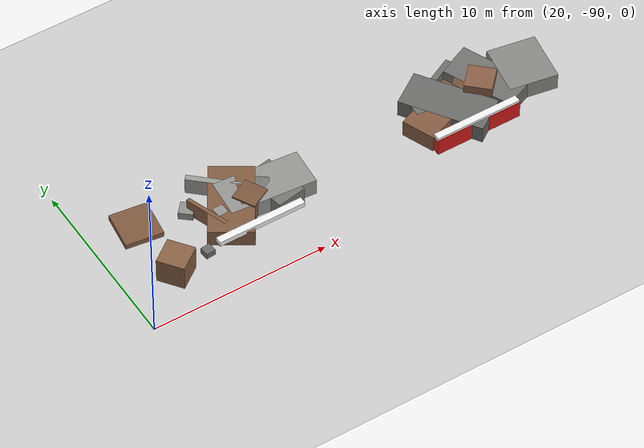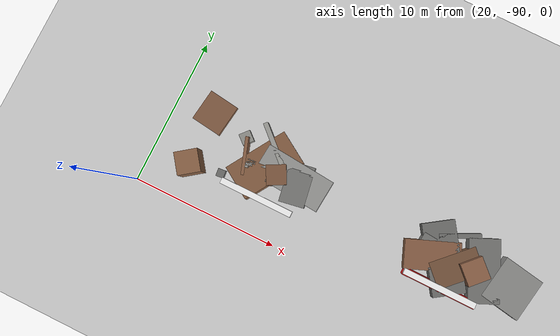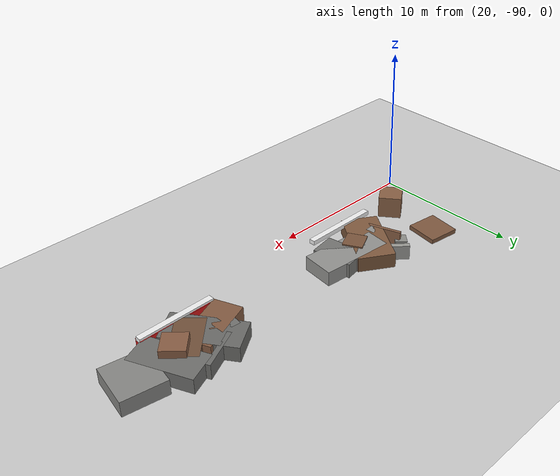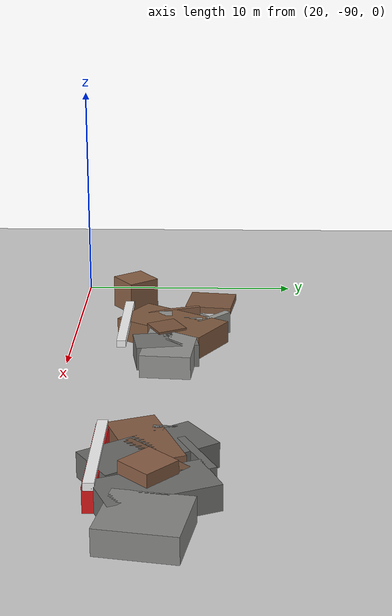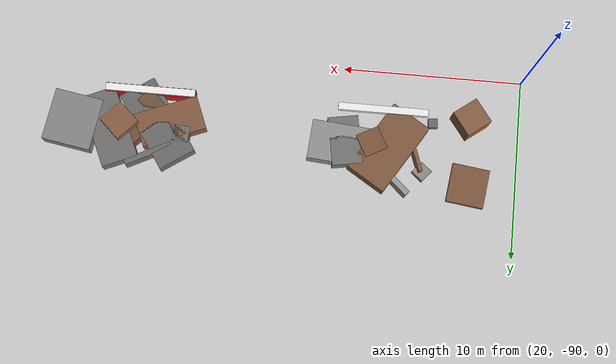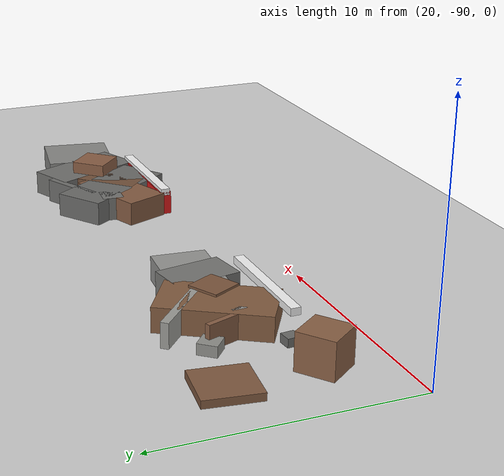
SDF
<sdf version="1.6">
 <world name="navitas_arena">
  <model name="ground_plane">
   <static>true</static>
   <link name="link">
    <collision name="collision">
     <geometry><plane><normal>0 0 1</normal><size>400 400</size></plane></geometry>
     <surface><friction><ode><mu>0.8</mu><mu2>0.8</mu2></ode></friction></surface>
    </collision>
    <visual name="visual">
     <cast_shadows>false</cast_shadows>
     <geometry><plane><normal>0 0 1</normal><size>400 400</size></plane></geometry>
     <material>
      <script><uri>file://media/materials/scripts/gazebo.material</uri><name>Gazebo/Grey</name></script>
     </material>
    </visual>
   </link>
  </model>
  <model name="bar_orta_0b">
   <static>true</static>
   <pose>27.700 -87.600 1.000 0 0 0.000</pose>
   <link name="link">
    <collision name="col"><geometry><box><size>5.000 0.400 0.300</size></box></geometry></collision>
    <visual name="vis">
     <geometry><box><size>5.000 0.400 0.300</size></box></geometry>
     <material><ambient>0.95 0.95 0.95 1</ambient><diffuse>0.95 0.95 0.95 1</diffuse></material>
    </visual>
   </link>
  </model>
  <model name="blk_orta_0_0_0">
   <static>true</static>
   <pose>25.813 -85.530 0.500 0 0 1.910</pose>
   <link name="link">
    <collision name="col"><geometry><box><size>2.503 0.212 1.000</size></box></geometry></collision>
    <visual name="vis">
     <geometry><box><size>2.503 0.212 1.000</size></box></geometry>
     <material><ambient>0.53 0.37 0.27 1</ambient><diffuse>0.53 0.37 0.27 1</diffuse></material>
    </visual>
   </link>
  </model>
  <model name="blk_orta_0_0_1">
   <static>true</static>
   <pose>26.397 -85.869 0.500 0 0 0.060</pose>
   <link name="link">
    <collision name="col"><geometry><box><size>0.595 0.595 1.000</size></box></geometry></collision>
    <visual name="vis">
     <geometry><box><size>0.595 0.595 1.000</size></box></geometry>
     <material><ambient>0.58 0.58 0.57 1</ambient><diffuse>0.58 0.58 0.57 1</diffuse></material>
    </visual>
   </link>
  </model>
  <model name="blk_orta_0_0_2">
   <static>true</static>
   <pose>27.256 -85.511 0.500 0 0 1.014</pose>
   <link name="link">
    <collision name="col"><geometry><box><size>4.406 2.409 1.000</size></box></geometry></collision>
    <visual name="vis">
     <geometry><box><size>4.406 2.409 1.000</size></box></geometry>
     <material><ambient>0.51 0.36 0.25 1</ambient><diffuse>0.51 0.36 0.25 1</diffuse></material>
    </visual>
   </link>
  </model>
  <model name="blk_orta_0_0_3">
   <static>true</static>
   <pose>28.209 -85.740 0.547 0 0 0.489</pose>
   <link name="link">
    <collision name="col"><geometry><box><size>1.322 1.322 1.094</size></box></geometry></collision>
    <visual name="vis">
     <geometry><box><size>1.322 1.322 1.094</size></box></geometry>
     <material><ambient>0.49 0.34 0.24 1</ambient><diffuse>0.49 0.34 0.24 1</diffuse></material>
    </visual>
   </link>
  </model>
  <model name="blk_orta_0_0_4">
   <static>true</static>
   <pose>29.248 -85.452 0.500 0 0 3.057</pose>
   <link name="link">
    <collision name="col"><geometry><box><size>4.783 2.193 1.000</size></box></geometry></collision>
    <visual name="vis">
     <geometry><box><size>4.783 2.193 1.000</size></box></geometry>
     <material><ambient>0.58 0.58 0.57 1</ambient><diffuse>0.58 0.58 0.57 1</diffuse></material>
    </visual>
   </link>
  </model>
  <model name="blk_orta_0_0_5">
   <static>true</static>
   <pose>29.677 -85.709 0.500 0 0 1.739</pose>
   <link name="link">
    <collision name="col"><geometry><box><size>2.698 1.683 1.000</size></box></geometry></collision>
    <visual name="vis">
     <geometry><box><size>2.698 1.683 1.000</size></box></geometry>
     <material><ambient>0.46 0.46 0.45 1</ambient><diffuse>0.46 0.46 0.45 1</diffuse></material>
    </visual>
   </link>
  </model>
  <model name="blk_orta_0_1_2">
   <static>true</static>
   <pose>27.340 -84.194 0.500 0 0 2.406</pose>
   <link name="link">
    <collision name="col"><geometry><box><size>3.475 0.321 1.000</size></box></geometry></collision>
    <visual name="vis">
     <geometry><box><size>3.475 0.321 1.000</size></box></geometry>
     <material><ambient>0.61 0.61 0.59 1</ambient><diffuse>0.61 0.61 0.59 1</diffuse></material>
    </visual>
   </link>
  </model>
  <model name="bar_orta_1">
   <static>true</static>
   <pose>40.700 -87.600 0.500 0 0 0.000</pose>
   <link name="link">
    <collision name="col"><geometry><box><size>5.000 0.500 1.000</size></box></geometry></collision>
    <visual name="vis">
     <geometry><box><size>5.000 0.500 1.000</size></box></geometry>
     <material><ambient>0.85 0.10 0.10 1</ambient><diffuse>0.85 0.10 0.10 1</diffuse></material>
    </visual>
   </link>
  </model>
  <model name="bar_orta_1b">
   <static>true</static>
   <pose>40.700 -87.600 1.000 0 0 0.000</pose>
   <link name="link">
    <collision name="col"><geometry><box><size>5.000 0.400 0.300</size></box></geometry></collision>
    <visual name="vis">
     <geometry><box><size>5.000 0.400 0.300</size></box></geometry>
     <material><ambient>0.95 0.95 0.95 1</ambient><diffuse>0.95 0.95 0.95 1</diffuse></material>
    </visual>
   </link>
  </model>
  <model name="blk_orta_1_0_0">
   <static>true</static>
   <pose>38.782 -85.297 0.500 0 0 1.487</pose>
   <link name="link">
    <collision name="col"><geometry><box><size>0.910 0.910 1.000</size></box></geometry></collision>
    <visual name="vis">
     <geometry><box><size>0.910 0.910 1.000</size></box></geometry>
     <material><ambient>0.45 0.45 0.44 1</ambient><diffuse>0.45 0.45 0.44 1</diffuse></material>
    </visual>
   </link>
  </model>
  <model name="blk_orta_1_0_1">
   <static>true</static>
   <pose>39.448 -85.943 0.500 0 0 0.378</pose>
   <link name="link">
    <collision name="col"><geometry><box><size>3.639 1.911 1.000</size></box></geometry></collision>
    <visual name="vis">
     <geometry><box><size>3.639 1.911 1.000</size></box></geometry>
     <material><ambient>0.52 0.36 0.26 1</ambient><diffuse>0.52 0.36 0.26 1</diffuse></material>
    </visual>
   </link>
  </model>
  <model name="blk_orta_1_0_2">
   <static>true</static>
   <pose>40.154 -85.776 0.500 0 0 2.167</pose>
   <link name="link">
    <collision name="col"><geometry><box><size>4.711 2.163 1.000</size></box></geometry></collision>
    <visual name="vis">
     <geometry><box><size>4.711 2.163 1.000</size></box></geometry>
     <material><ambient>0.42 0.42 0.41 1</ambient><diffuse>0.42 0.42 0.41 1</diffuse></material>
    </visual>
   </link>
  </model>
  <model name="blk_orta_1_0_3">
   <static>true</static>
   <pose>41.162 -85.969 0.500 0 0 0.788</pose>
   <link name="link">
    <collision name="col"><geometry><box><size>3.174 1.797 1.000</size></box></geometry></collision>
    <visual name="vis">
     <geometry><box><size>3.174 1.797 1.000</size></box></geometry>
     <material><ambient>0.45 0.32 0.23 1</ambient><diffuse>0.45 0.32 0.23 1</diffuse></material>
    </visual>
   </link>
  </model>
  <model name="blk_orta_1_0_4">
   <static>true</static>
   <pose>42.198 -85.650 0.754 0 0 2.382</pose>
   <link name="link">
    <collision name="col"><geometry><box><size>1.494 1.494 1.509</size></box></geometry></collision>
    <visual name="vis">
     <geometry><box><size>1.494 1.494 1.509</size></box></geometry>
     <material><ambient>0.54 0.37 0.27 1</ambient><diffuse>0.54 0.37 0.27 1</diffuse></material>
    </visual>
   </link>
  </model>
  <model name="blk_orta_1_0_5">
   <static>true</static>
   <pose>42.805 -85.363 0.500 0 0 1.982</pose>
   <link name="link">
    <collision name="col"><geometry><box><size>4.125 2.034 1.000</size></box></geometry></collision>
    <visual name="vis">
     <geometry><box><size>4.125 2.034 1.000</size></box></geometry>
     <material><ambient>0.44 0.44 0.43 1</ambient><diffuse>0.44 0.44 0.43 1</diffuse></material>
    </visual>
   </link>
  </model>
  <model name="blk_orta_1_1_2">
   <static>true</static>
   <pose>40.506 -84.041 0.500 0 0 0.465</pose>
   <link name="link">
    <collision name="col"><geometry><box><size>2.719 0.321 1.000</size></box></geometry></collision>
    <visual name="vis">
     <geometry><box><size>2.719 0.321 1.000</size></box></geometry>
     <material><ambient>0.43 0.43 0.42 1</ambient><diffuse>0.43 0.43 0.42 1</diffuse></material>
    </visual>
   </link>
  </model>
  <model name="chic_orta_3">
   <static>true</static>
   <pose>44.853 -85.600 0.500 0 0 2.974</pose>
   <link name="link">
    <collision name="col"><geometry><box><size>2.732 2.924 1.000</size></box></geometry></collision>
    <visual name="vis">
     <geometry><box><size>2.732 2.924 1.000</size></box></geometry>
     <material><ambient>0.53 0.53 0.52 1</ambient><diffuse>0.53 0.53 0.52 1</diffuse></material>
    </visual>
   </link>
  </model>
  <model name="deb_orta_8">
   <static>true</static>
   <pose>22.797 -87.508 0.745 0 0 0.641</pose>
   <link name="link">
    <collision name="col"><geometry><box><size>1.524 1.524 1.489</size></box></geometry></collision>
    <visual name="vis">
     <geometry><box><size>1.524 1.524 1.489</size></box></geometry>
     <material><ambient>0.54 0.38 0.27 1</ambient><diffuse>0.54 0.38 0.27 1</diffuse></material>
    </visual>
   </link>
  </model>
  <model name="deb_orta_26">
   <static>true</static>
   <pose>24.818 -87.238 0.177 0 0 1.660</pose>
   <link name="link">
    <collision name="col"><geometry><box><size>0.526 0.526 0.354</size></box></geometry></collision>
    <visual name="vis">
     <geometry><box><size>0.526 0.526 0.354</size></box></geometry>
     <material><ambient>0.42 0.42 0.41 1</ambient><diffuse>0.42 0.42 0.41 1</diffuse></material>
    </visual>
   </link>
  </model>
  <model name="deb_orta_70">
   <static>true</static>
   <pose>22.657 -83.861 0.154 0 0 1.439</pose>
   <link name="link">
    <collision name="col"><geometry><box><size>2.187 2.095 0.307</size></box></geometry></collision>
    <visual name="vis">
     <geometry><box><size>2.187 2.095 0.307</size></box></geometry>
     <material><ambient>0.50 0.35 0.25 1</ambient><diffuse>0.50 0.35 0.25 1</diffuse></material>
    </visual>
   </link>
  </model>
  <model name="deb_orta_84">
   <static>true</static>
   <pose>25.282 -84.419 0.221 0 0 0.861</pose>
   <link name="link">
    <collision name="col"><geometry><box><size>0.779 0.779 0.442</size></box></geometry></collision>
    <visual name="vis">
     <geometry><box><size>0.779 0.779 0.442</size></box></geometry>
     <material><ambient>0.56 0.56 0.54 1</ambient><diffuse>0.56 0.56 0.54 1</diffuse></material>
    </visual>
   </link>
  </model>
 </world>
</sdf>
